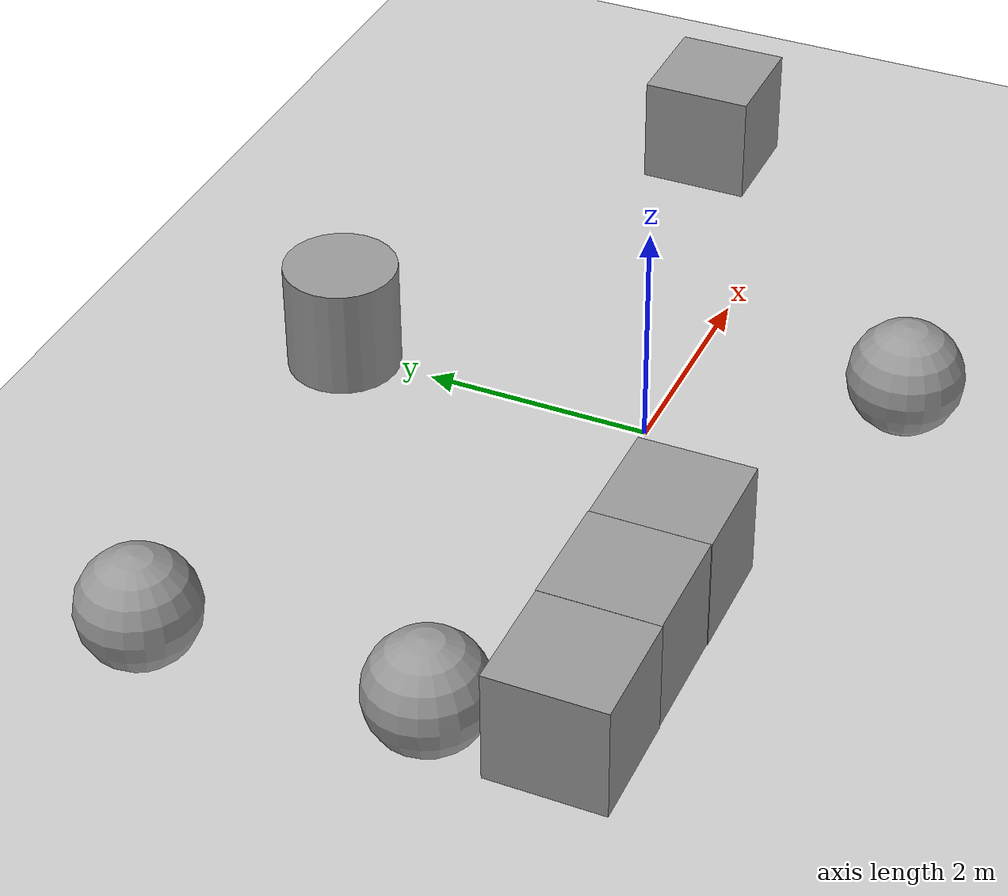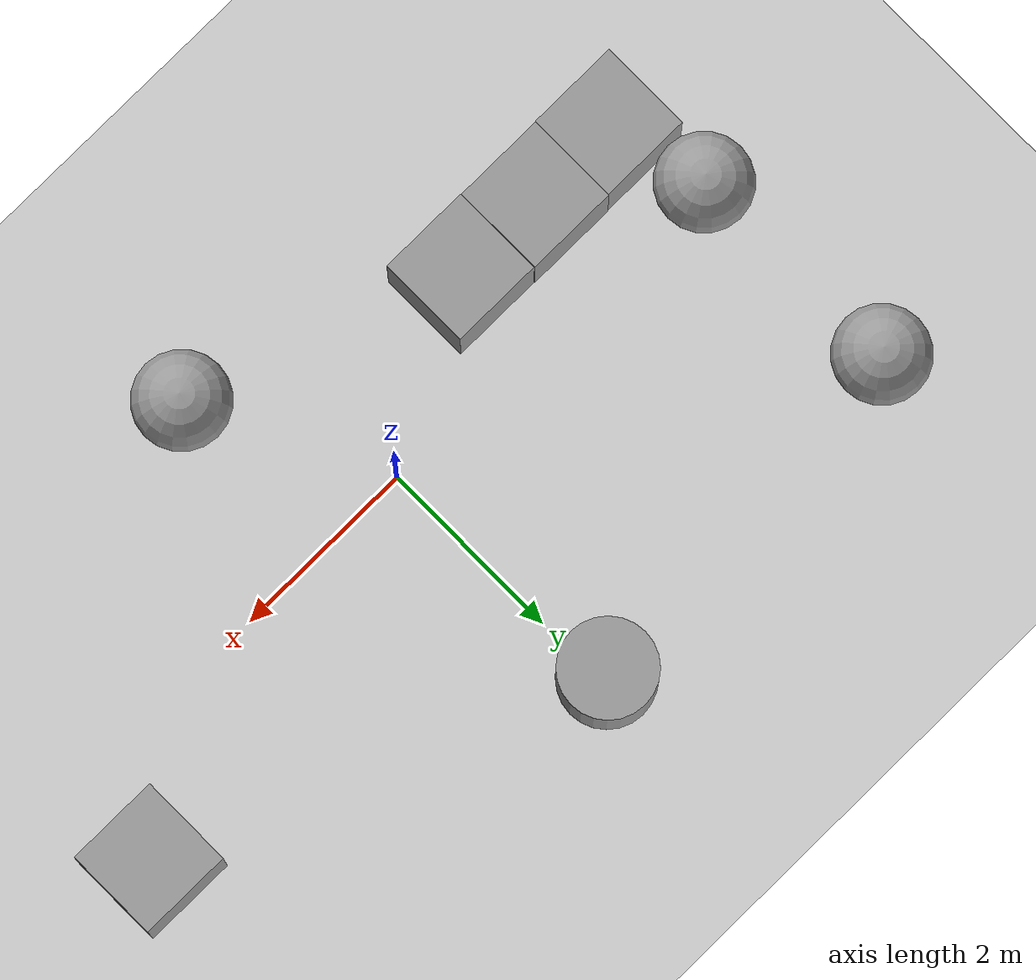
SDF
<sdf version="1.6">
 <world name="default">
  <light name="sun" type="directional">
   <pose>0 0 10 0 -0 0</pose>
   <diffuse>0.8 0.8 0.8 1</diffuse>
   <specular>0.2 0.2 0.2 1</specular>
   <attenuation>
    <range>1000</range>
    <constant>0.9</constant>
    <linear>0.01</linear>
    <quadratic>0.001</quadratic>
   </attenuation>
   <direction>-0.5 0.1 -0.9</direction>
  </light>
  <model name="ground_plane">
   <static>1</static>
   <link name="link">
    <collision name="collision">
     <geometry><plane><normal>0 0 1</normal><size>100 100</size></plane></geometry>
     <surface>
      <contact><collide_bitmask>65535</collide_bitmask></contact>
      <friction><ode><mu>100</mu><mu2>50</mu2></ode></friction>
     </surface>
    </collision>
    <visual name="visual">
     <cast_shadows>0</cast_shadows>
     <geometry><plane><normal>0 0 1</normal><size>100 100</size></plane></geometry>
     <material>
      <script><uri>file://media/materials/scripts/gazebo.material</uri><name>Gazebo/Grey</name></script>
     </material>
    </visual>
   </link>
  </model>
  <gravity>0 0 -9.8</gravity>
  <magnetic_field>6e-06 2.3e-05 -4.2e-05</magnetic_field>
  <atmosphere type="adiabatic"/>
  <physics name="default_physics" default="0" type="ode">
   <max_step_size>0.001</max_step_size>
   <real_time_factor>1</real_time_factor>
   <real_time_update_rate>1000</real_time_update_rate>
  </physics>
  <scene><ambient>0.4 0.4 0.4 1</ambient><background>0.7 0.7 0.7 1</background><shadows>1</shadows></scene>
  <audio><device>default</device></audio>
  <spherical_coordinates>
   <surface_model>EARTH_WGS84</surface_model>
   <latitude_deg>0</latitude_deg>
   <longitude_deg>0</longitude_deg>
   <elevation>0</elevation>
   <heading_deg>0</heading_deg>
  </spherical_coordinates>
  <model name="unit_box">
   <pose>-1.78247 -0.93311 0.499995 0 1e-05 0.001226</pose>
   <link name="link">
    <inertial>
     <mass>1</mass>
     <inertia>
      <ixx>0.166667</ixx>
      <ixy>0</ixy>
      <ixz>0</ixz>
      <iyy>0.166667</iyy>
      <iyz>0</iyz>
      <izz>0.166667</izz>
     </inertia>
    </inertial>
    <collision name="collision"><geometry><box><size>1 1 1</size></box></geometry></collision>
    <visual name="visual">
     <geometry><box><size>1 1 1</size></box></geometry>
     <material>
      <script><name>Gazebo/Grey</name><uri>file://media/materials/scripts/gazebo.material</uri></script>
     </material>
    </visual>
   </link>
  </model>
  <model name="unit_sphere">
   <pose>0.991152 -1.94614 0.5 0 -0 0</pose>
   <link name="link">
    <inertial>
     <mass>1</mass>
     <inertia><ixx>0.1</ixx><ixy>0</ixy><ixz>0</ixz><iyy>0.1</iyy><iyz>0</iyz><izz>0.1</izz></inertia>
    </inertial>
    <collision name="collision"><geometry><sphere><radius>0.5</radius></sphere></geometry></collision>
    <visual name="visual">
     <geometry><sphere><radius>0.5</radius></sphere></geometry>
     <material>
      <script><name>Gazebo/Grey</name><uri>file://media/materials/scripts/gazebo.material</uri></script>
     </material>
    </visual>
   </link>
  </model>
  <model name="unit_cylinder">
   <pose>-0.071859 2.80639 0.499998 3e-06 -4e-06 0</pose>
   <link name="link">
    <inertial>
     <mass>1</mass>
     <inertia><ixx>0.145833</ixx><ixy>0</ixy><ixz>0</ixz><iyy>0.145833</iyy><iyz>0</iyz><izz>0.125</izz></inertia>
    </inertial>
    <collision name="collision">
     <geometry><cylinder><radius>0.5</radius><length>1</length></cylinder></geometry>
    </collision>
    <visual name="visual">
     <geometry><cylinder><radius>0.5</radius><length>1</length></cylinder></geometry>
     <material>
      <script><name>Gazebo/Grey</name><uri>file://media/materials/scripts/gazebo.material</uri></script>
     </material>
    </visual>
   </link>
  </model>
  <model name="unit_box_0">
   <pose>-2.78256 -0.927671 0.5 0 -0 0.001373</pose>
   <link name="link">
    <inertial>
     <mass>1</mass>
     <inertia>
      <ixx>0.166667</ixx>
      <ixy>0</ixy>
      <ixz>0</ixz>
      <iyy>0.166667</iyy>
      <iyz>0</iyz>
      <izz>0.166667</izz>
     </inertia>
    </inertial>
    <collision name="collision"><geometry><box><size>1 1 1</size></box></geometry></collision>
    <visual name="visual">
     <geometry><box><size>1 1 1</size></box></geometry>
     <material>
      <script><name>Gazebo/Grey</name><uri>file://media/materials/scripts/gazebo.material</uri></script>
     </material>
    </visual>
   </link>
  </model>
  <model name="unit_box_1">
   <pose>-3.78269 -0.935108 0.5 0 -0 0.00166</pose>
   <link name="link">
    <inertial>
     <mass>1</mass>
     <inertia>
      <ixx>0.166667</ixx>
      <ixy>0</ixy>
      <ixz>0</ixz>
      <iyy>0.166667</iyy>
      <iyz>0</iyz>
      <izz>0.166667</izz>
     </inertia>
    </inertial>
    <collision name="collision"><geometry><box><size>1 1 1</size></box></geometry></collision>
    <visual name="visual">
     <geometry><box><size>1 1 1</size></box></geometry>
     <material>
      <script><name>Gazebo/Grey</name><uri>file://media/materials/scripts/gazebo.material</uri></script>
     </material>
    </visual>
   </link>
  </model>
  <model name="unit_sphere_0">
   <pose>-4.08928 0.074332 0.5 -0.019998 -3.5e-05 -0.000437</pose>
   <link name="link">
    <inertial>
     <mass>1</mass>
     <inertia><ixx>0.1</ixx><ixy>0</ixy><ixz>0</ixz><iyy>0.1</iyy><iyz>0</iyz><izz>0.1</izz></inertia>
    </inertial>
    <collision name="collision"><geometry><sphere><radius>0.5</radius></sphere></geometry></collision>
    <visual name="visual">
     <geometry><sphere><radius>0.5</radius></sphere></geometry>
     <material>
      <script><name>Gazebo/Grey</name><uri>file://media/materials/scripts/gazebo.material</uri></script>
     </material>
    </visual>
   </link>
  </model>
  <model name="unit_sphere_1">
   <pose>-4.12383 2.46874 0.5 0 -0 0</pose>
   <link name="link">
    <inertial>
     <mass>1</mass>
     <inertia><ixx>0.1</ixx><ixy>0</ixy><ixz>0</ixz><iyy>0.1</iyy><iyz>0</iyz><izz>0.1</izz></inertia>
    </inertial>
    <collision name="collision"><geometry><sphere><radius>0.5</radius></sphere></geometry></collision>
    <visual name="visual">
     <geometry><sphere><radius>0.5</radius></sphere></geometry>
     <material>
      <script><name>Gazebo/Grey</name><uri>file://media/materials/scripts/gazebo.material</uri></script>
     </material>
    </visual>
   </link>
  </model>
  <model name="unit_box_2">
   <pose>4.30269 1.034 0.5 0 -0 0</pose>
   <link name="link">
    <inertial>
     <mass>1</mass>
     <inertia>
      <ixx>0.166667</ixx>
      <ixy>0</ixy>
      <ixz>0</ixz>
      <iyy>0.166667</iyy>
      <iyz>0</iyz>
      <izz>0.166667</izz>
     </inertia>
    </inertial>
    <collision name="collision"><geometry><box><size>1 1 1</size></box></geometry></collision>
    <visual name="visual">
     <geometry><box><size>1 1 1</size></box></geometry>
     <material>
      <script><name>Gazebo/Grey</name><uri>file://media/materials/scripts/gazebo.material</uri></script>
     </material>
    </visual>
   </link>
  </model>
 </world>
</sdf>
